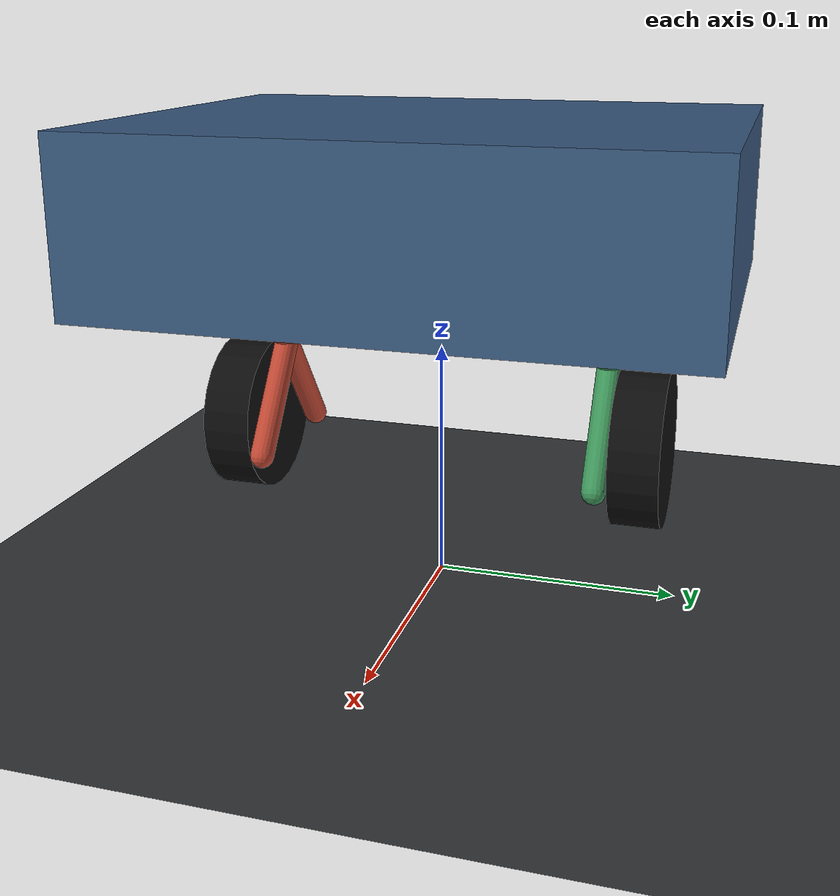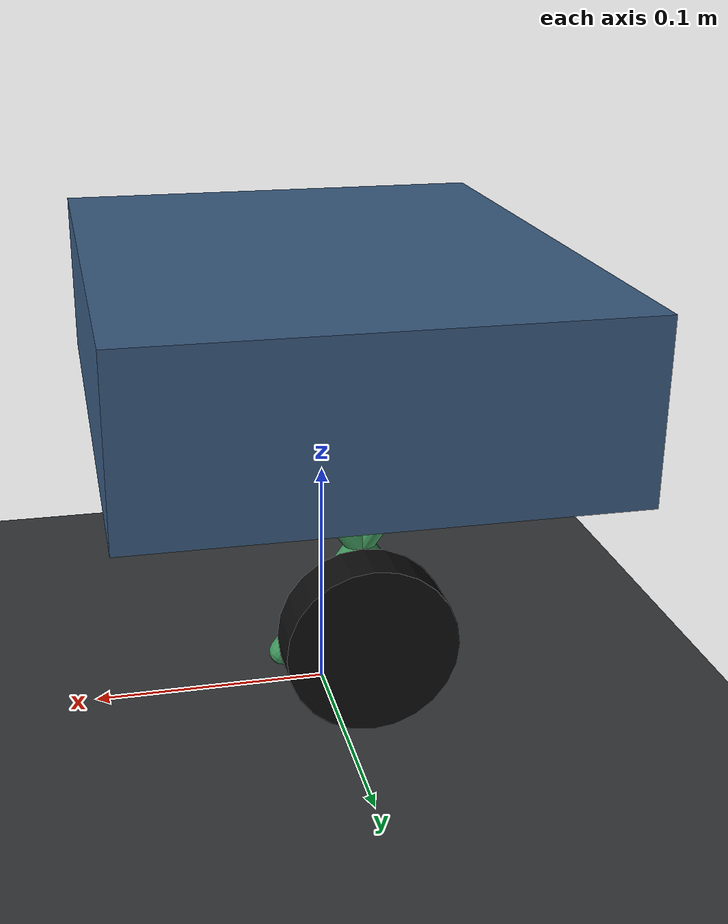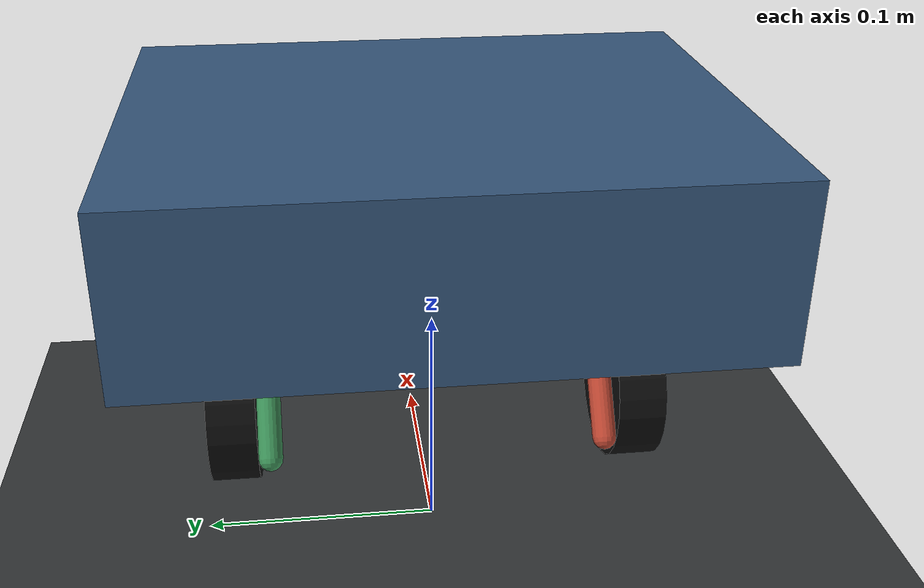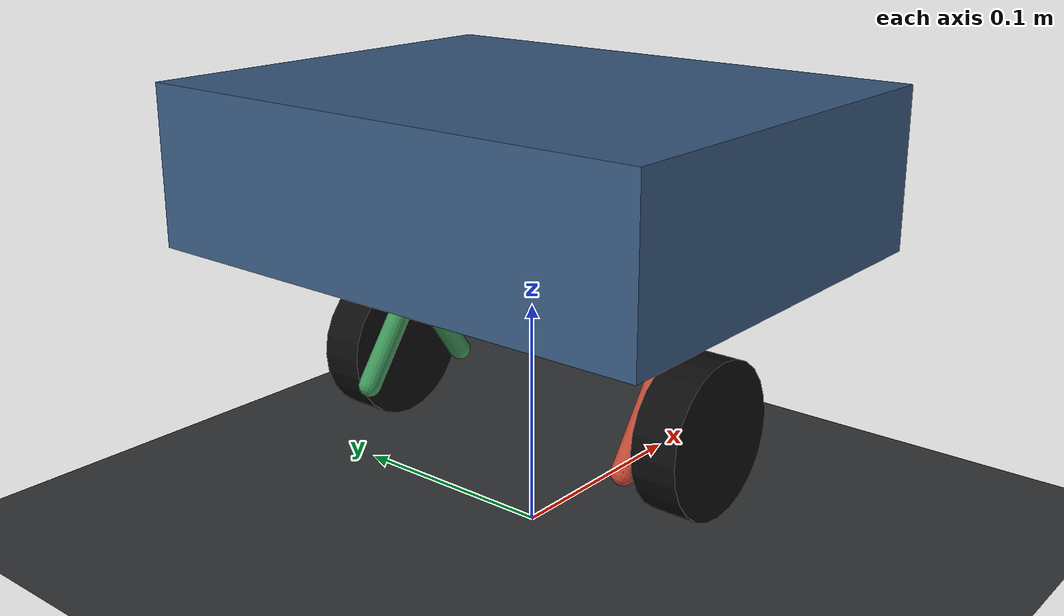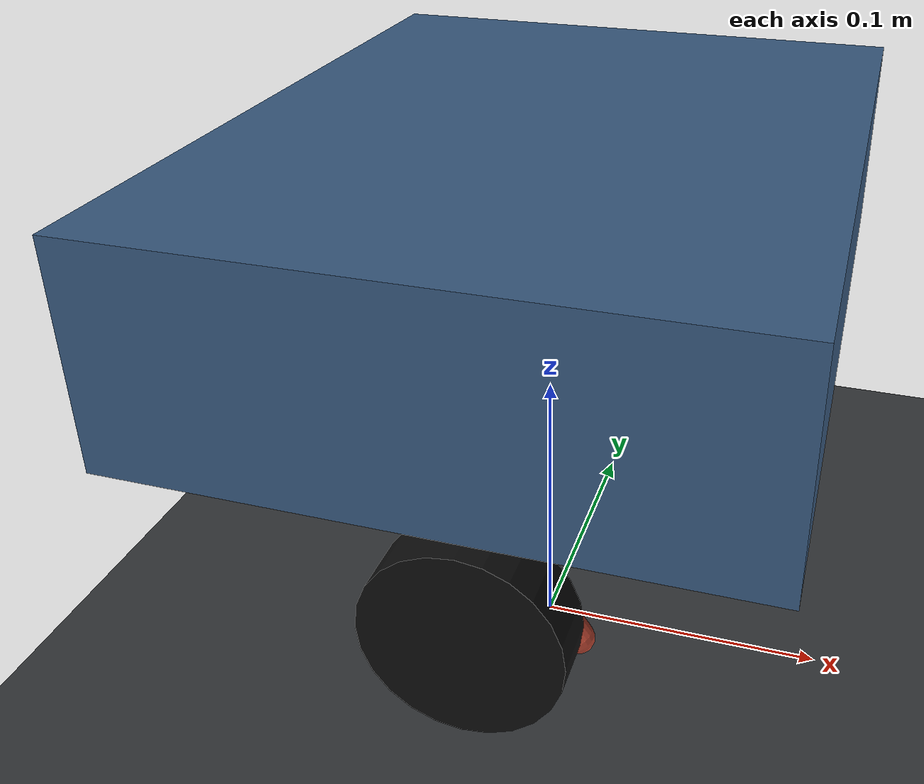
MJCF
<mujoco model="ArbatosWheelLegMinimal">
  <compiler angle="radian" autolimits="true"/>
  <option timestep="0.003" integrator="RK4" gravity="0 0 -9.81"/>

  <default>
    <joint damping="0.02" armature="0.0002"/>
    <geom condim="3" friction="1.2 0.02 0.001" solref="0.01 1"/>
    <motor ctrllimited="true"/>
  </default>

  <asset>
    <texture name="grid" type="2d" builtin="checker" width="512" height="512"
             rgb1="0.18 0.19 0.20" rgb2="0.23 0.24 0.25"/>
    <material name="floor_mat" texture="grid" texrepeat="10 10" reflectance="0.15"/>
    <material name="body_mat" rgba="0.22 0.35 0.50 1"/>
    <material name="right_mat" rgba="0.75 0.28 0.20 1"/>
    <material name="left_mat" rgba="0.24 0.58 0.35 1"/>
    <material name="wheel_mat" rgba="0.05 0.05 0.05 1"/>
  </asset>

  <worldbody>
    <light pos="0 -3 3" dir="0 1 -1" diffuse="0.8 0.8 0.8"/>
    <geom name="floor" type="plane" size="5 5 0.1" material="floor_mat"/>

    <body name="base" pos="0 0 0.16">
      <freejoint name="base_free"/>
      <site name="imu" pos="0 0 0" size="0.006"/>
      <geom name="body" type="box" size="0.095 0.120 0.035" mass="1.35" material="body_mat"/>

      <body name="right_wheel" pos="0 -0.085 -0.095">
        <joint name="right_wheel_hinge" type="hinge" axis="0 1 0"/>
        <geom name="right_wheel_geom" type="cylinder" size="0.03275 0.010"
              euler="1.5707963268 0 0" mass="0.08" material="wheel_mat"
              friction="1.6 0.02 0.001"/>
      </body>

      <body name="left_wheel" pos="0 0.085 -0.095">
        <joint name="left_wheel_hinge" type="hinge" axis="0 1 0"/>
        <geom name="left_wheel_geom" type="cylinder" size="0.03275 0.010"
              euler="1.5707963268 0 0" mass="0.08" material="wheel_mat"
              friction="1.6 0.02 0.001"/>
      </body>

      <body name="right_front_link" pos="-0.030 -0.070 -0.020">
        <joint name="right_front_hinge" type="hinge" axis="0 1 0" range="-3.2 1.0"/>
        <geom name="right_front_geom" type="capsule" fromto="0 0 0 0.060 0 -0.085"
              size="0.005" mass="0.025" material="right_mat" contype="0" conaffinity="0"/>
      </body>

      <body name="right_back_link" pos="0.030 -0.070 -0.020">
        <joint name="right_back_hinge" type="hinge" axis="0 1 0" range="-3.2 1.0"/>
        <geom name="right_back_geom" type="capsule" fromto="0 0 0 -0.060 0 -0.085"
              size="0.005" mass="0.025" material="right_mat" contype="0" conaffinity="0"/>
      </body>

      <body name="left_front_link" pos="-0.030 0.070 -0.020">
        <joint name="left_front_hinge" type="hinge" axis="0 1 0" range="-3.2 1.0"/>
        <geom name="left_front_geom" type="capsule" fromto="0 0 0 0.060 0 -0.085"
              size="0.005" mass="0.025" material="left_mat" contype="0" conaffinity="0"/>
      </body>

      <body name="left_back_link" pos="0.030 0.070 -0.020">
        <joint name="left_back_hinge" type="hinge" axis="0 1 0" range="-3.2 1.0"/>
        <geom name="left_back_geom" type="capsule" fromto="0 0 0 -0.060 0 -0.085"
              size="0.005" mass="0.025" material="left_mat" contype="0" conaffinity="0"/>
      </body>
    </body>
  </worldbody>

  <actuator>
    <motor name="right_front_motor" joint="right_front_hinge" ctrlrange="-3 3"/>
    <motor name="right_back_motor" joint="right_back_hinge" ctrlrange="-3 3"/>
    <motor name="right_wheel_motor" joint="right_wheel_hinge" ctrlrange="-0.45 0.45"/>
    <motor name="left_front_motor" joint="left_front_hinge" ctrlrange="-3 3"/>
    <motor name="left_back_motor" joint="left_back_hinge" ctrlrange="-3 3"/>
    <motor name="left_wheel_motor" joint="left_wheel_hinge" ctrlrange="-0.45 0.45"/>
  </actuator>
</mujoco>
